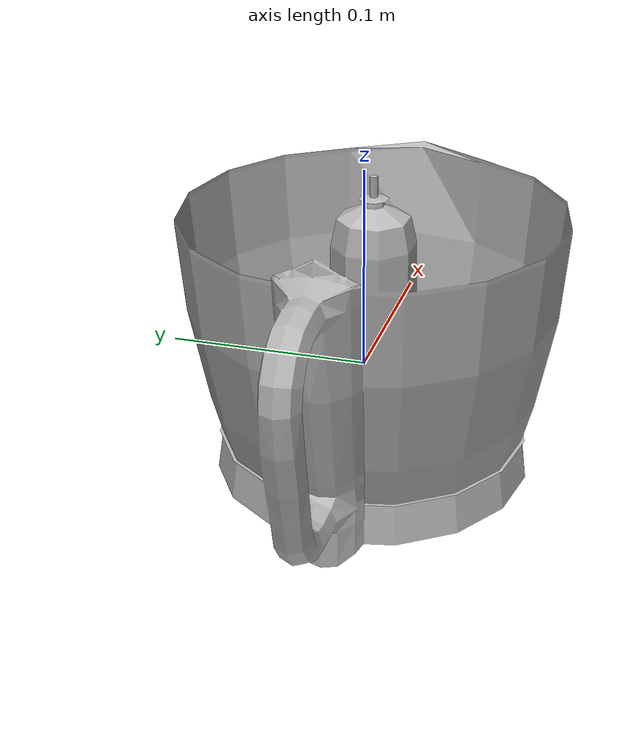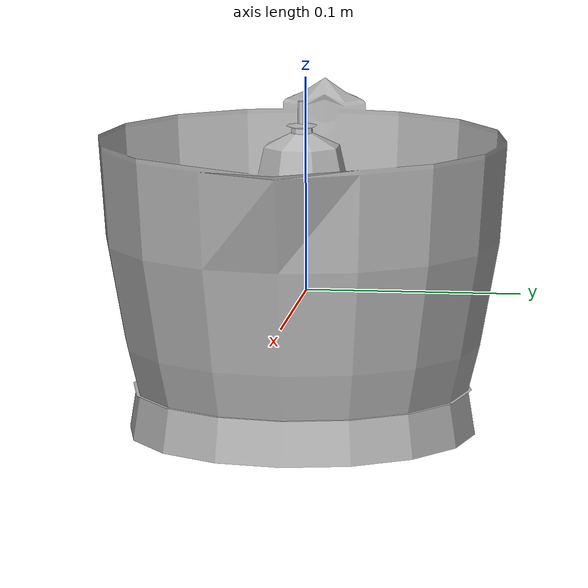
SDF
<?xml version="1.0" ?>
<sdf version="1.5">
  <model name="blender_bowl">
    <link name="blender_bowl">
      <gravity>false</gravity>
      <inertial>
        <mass>0.02</mass>
      </inertial>
      <collision name="blender_bowl_collision">
        <geometry><box><size>0.0001 0.0001 0.0001</size></box></geometry>
          <surface>
            <contact>
              <collide_without_contact>true</collide_without_contact>
            </contact>
          </surface>
      </collision>
      <visual name="blender_bowl_visual">
        <geometry>
          <mesh>
            <uri>model://blender_bowl/meshes/blender_bowl.stl</uri>
          </mesh>
        </geometry>
      </visual>
    </link>
  </model>
</sdf>
